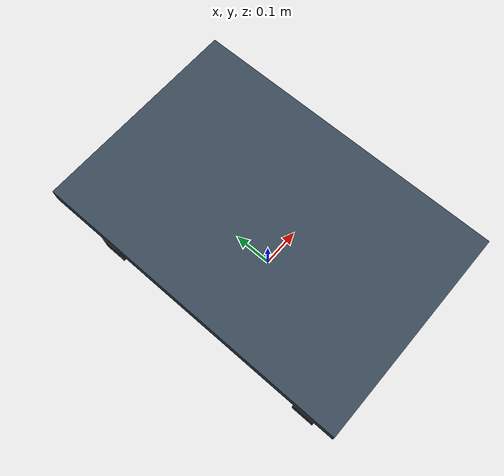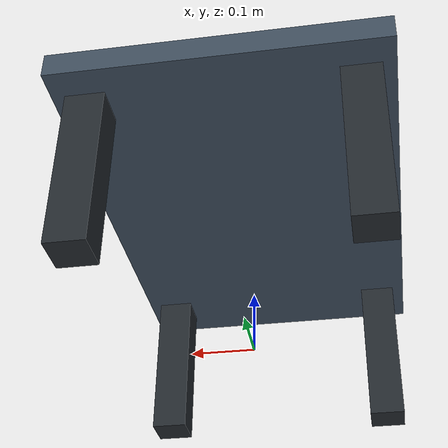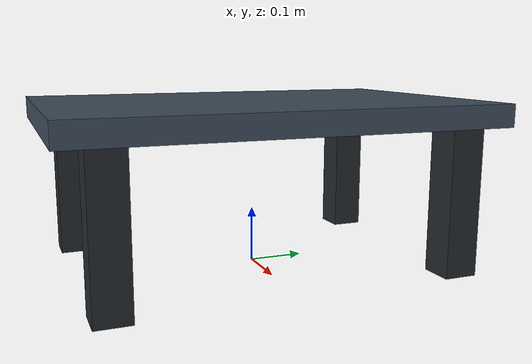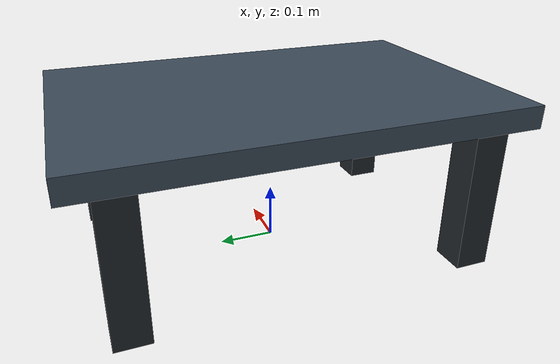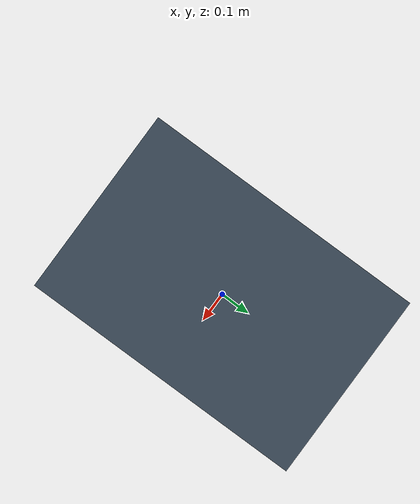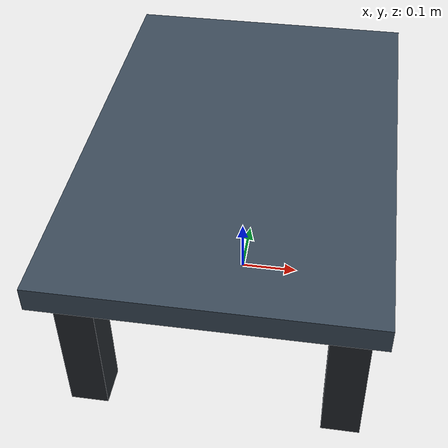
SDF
<?xml version="1.0"?>
<sdf version="1.8">
  <model name="sensoragent_workbench">
    <static>true</static>
    <link name="workbench">
      <collision name="top_collision">
        <pose>0 0 0.28 0 0 0</pose>
        <geometry>
          <box>
            <size>0.5 0.75 0.04</size>
          </box>
        </geometry>
        <surface>
          <friction>
            <ode>
              <mu>20.0</mu>
              <mu2>20.0</mu2>
              <slip1>0.0</slip1>
              <slip2>0.0</slip2>
            </ode>
            <torsional>
              <coefficient>1.0</coefficient>
              <patch_radius>0.02</patch_radius>
              <surface_radius>0.02</surface_radius>
              <use_patch_radius>true</use_patch_radius>
              <ode>
                <slip>0.0</slip>
              </ode>
            </torsional>
          </friction>
        </surface>
      </collision>
      <visual name="top_visual">
        <pose>0 0 0.28 0 0 0</pose>
        <geometry>
          <box>
            <size>0.5 0.75 0.04</size>
          </box>
        </geometry>
        <material>
          <ambient>0.18 0.22 0.26 1</ambient>
          <diffuse>0.24 0.30 0.36 1</diffuse>
          <specular>0.35 0.35 0.35 1</specular>
        </material>
      </visual>

      <collision name="front_left_leg_collision">
        <pose>-0.20 0.30 0.13 0 0 0</pose>
        <geometry><box><size>0.06 0.06 0.26</size></box></geometry>
      </collision>
      <visual name="front_left_leg_visual">
        <pose>-0.20 0.30 0.13 0 0 0</pose>
        <geometry><box><size>0.06 0.06 0.26</size></box></geometry>
        <material>
          <ambient>0.10 0.12 0.14 1</ambient>
          <diffuse>0.14 0.16 0.18 1</diffuse>
        </material>
      </visual>

      <collision name="front_right_leg_collision">
        <pose>0.20 0.30 0.13 0 0 0</pose>
        <geometry><box><size>0.06 0.06 0.26</size></box></geometry>
      </collision>
      <visual name="front_right_leg_visual">
        <pose>0.20 0.30 0.13 0 0 0</pose>
        <geometry><box><size>0.06 0.06 0.26</size></box></geometry>
        <material>
          <ambient>0.10 0.12 0.14 1</ambient>
          <diffuse>0.14 0.16 0.18 1</diffuse>
        </material>
      </visual>

      <collision name="back_left_leg_collision">
        <pose>-0.20 -0.30 0.13 0 0 0</pose>
        <geometry><box><size>0.06 0.06 0.26</size></box></geometry>
      </collision>
      <visual name="back_left_leg_visual">
        <pose>-0.20 -0.30 0.13 0 0 0</pose>
        <geometry><box><size>0.06 0.06 0.26</size></box></geometry>
        <material>
          <ambient>0.10 0.12 0.14 1</ambient>
          <diffuse>0.14 0.16 0.18 1</diffuse>
        </material>
      </visual>

      <collision name="back_right_leg_collision">
        <pose>0.20 -0.30 0.13 0 0 0</pose>
        <geometry><box><size>0.06 0.06 0.26</size></box></geometry>
      </collision>
      <visual name="back_right_leg_visual">
        <pose>0.20 -0.30 0.13 0 0 0</pose>
        <geometry><box><size>0.06 0.06 0.26</size></box></geometry>
        <material>
          <ambient>0.10 0.12 0.14 1</ambient>
          <diffuse>0.14 0.16 0.18 1</diffuse>
        </material>
      </visual>
    </link>
  </model>
</sdf>
